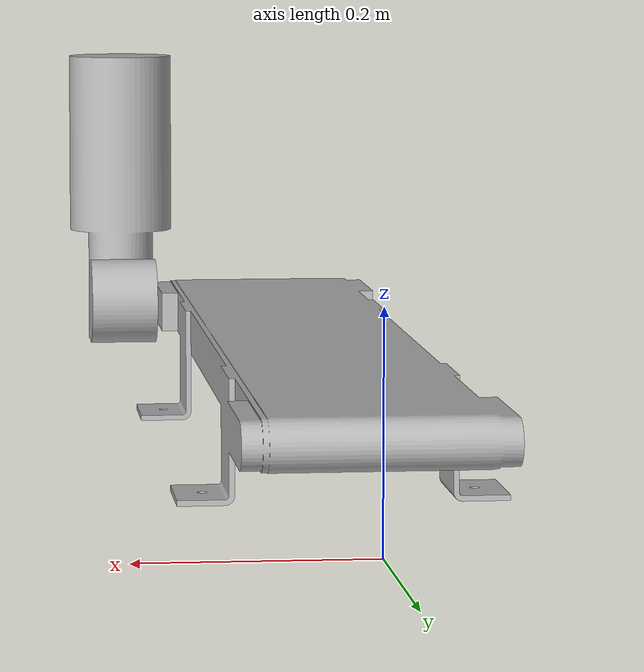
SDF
<?xml version="1.0" ?>
<sdf version="1.3">
  <model name="Conveyor_Belt_180degree">
    <static>true</static>
    <link name="link">
      <pose>0 0 0 0 0 0</pose>
      <collision name="collision">
        <geometry>
          <mesh>
            <uri>model://Conveyor_Belt_180degree/meshes/conveyor_belt_180degree.dae</uri>
          </mesh>
        </geometry>
      </collision>
      <visual name="visual">
        <geometry>
          <mesh>
            <uri>model://Conveyor_Belt_180degree/meshes/conveyor_belt_180degree.dae</uri>
          </mesh>
        </geometry>
      </visual>
    </link>
  </model>
</sdf>
